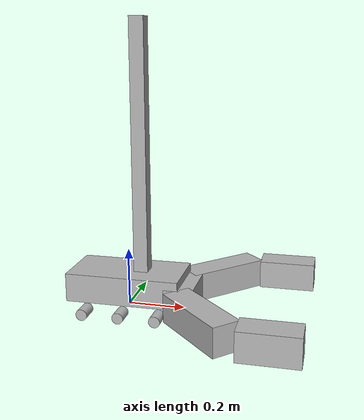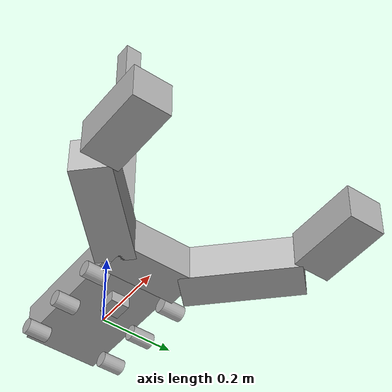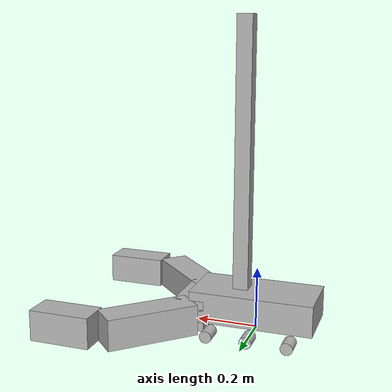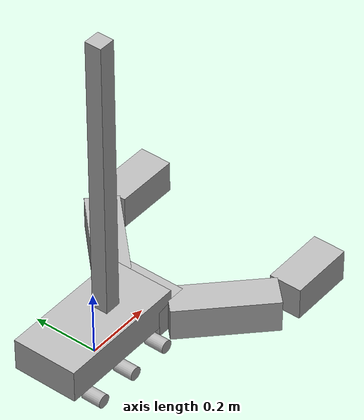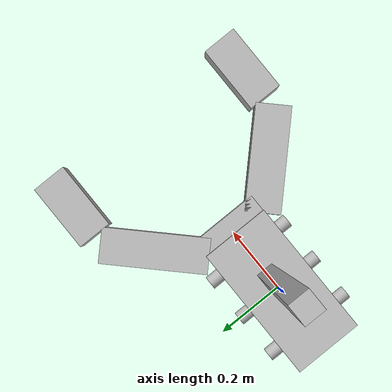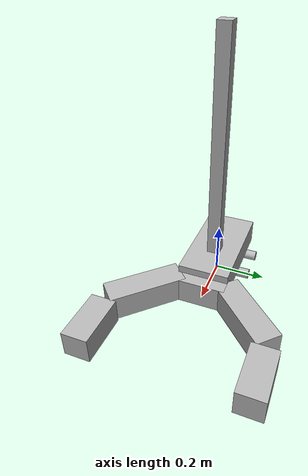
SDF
<?xml version="1.0" ?>
<sdf version="1.5">
  <model name="six_leg_robot">

    <include>
      <uri>model://simple_gripper</uri>
      <pose>0.2 0 0 0 0 0</pose>
    </include>

    <include>
      <uri>model://base_robot</uri>
      <pose>0 0 0 0 0 0</pose>
    </include>

    <joint name="arm_gripper_joint" type="fixed">
      <parent>mobile_base::chassis</parent>
      <child>simple_gripper::riser</child>
    </joint>

  </model>
</sdf>

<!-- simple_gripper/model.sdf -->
<sdf version="1.5">
  <model name="simple_gripper">
    <link name="riser">
      <pose>-0.15 0.0 0.5 0 0 0</pose>
      <inertial>
        <mass>10</mass>
      </inertial>
      <collision name="collision">
        <geometry>
          <box>
            <size>0.05 0.05 1.0</size>
          </box>
        </geometry>
        <surface>
          <contact>
            <ode>
              <max_vel>0.0</max_vel>
            </ode>
          </contact>
        </surface>
      </collision>
      <visual name="visual">
        <geometry>
          <box>
            <size>0.05 0.05 1.0</size>
          </box>
        </geometry>
      </visual>
    </link>
    <link name="palm">
      <pose>0.0 0.0 0.05 0 0 0</pose>
      <inertial>
        <mass>0.5</mass>
      </inertial>
      <collision name="collision">
        <geometry>
          <box>
            <size>0.1 0.2 0.1</size>
          </box>
        </geometry>
        <surface>
          <contact>
            <ode>
              <max_vel>0.0</max_vel>
            </ode>
          </contact>
        </surface>
      </collision>
      <visual name="visual">
        <geometry>
          <box>
            <size>0.1 0.2 0.1</size>
          </box>
        </geometry>
      </visual>
    </link>
    <link name="left_finger">
      <pose>0.1 0.2 0.05 0 0 -0.78539</pose>
      <inertial>
        <mass>0.1</mass>
      </inertial>
      <collision name="collision">
        <geometry>
          <box>
            <size>0.1 0.3 0.1</size>
          </box>
        </geometry>
        <surface>
          <friction>
            <ode>
              <mu>0.1</mu>
              <mu2>0</mu2>
            </ode>
          </friction>
          <contact>
            <ode>
              <max_vel>0.0</max_vel>
            </ode>
          </contact>
        </surface>
      </collision>
      <visual name="visual">
        <geometry>
          <box>
            <size>0.1 0.3 0.1</size>
          </box>
        </geometry>
      </visual>
    </link>
    <link name="left_finger_tip">
      <pose>0.336 0.3 0.05 0 0 1.5707</pose>
      <inertial>
        <mass>0.5</mass>
      </inertial>
      <collision name="collision">
        <geometry>
          <box>
            <size>0.1 0.2 0.1</size>
          </box>
        </geometry>
        <surface>
          <friction>
            <ode>
              <mu>.1</mu>
              <mu2>0</mu2>
            </ode>
          </friction>
          <contact>
            <ode>
              <max_vel>0.0</max_vel>
            </ode>
          </contact>
        </surface>
      </collision>
      <visual name="visual">
        <geometry>
          <box>
            <size>0.1 0.2 0.1</size>
          </box>
        </geometry>
      </visual>
    </link>
    <link name="right_finger">
      <pose>0.1 -0.2 0.05 0 0 .78539</pose>
      <inertial>
        <mass>0.1</mass>
      </inertial>
      <collision name="collision">
        <geometry>
          <box>
            <size>0.1 0.3 0.1</size>
          </box>
        </geometry>
        <surface>
          <friction>
            <ode>
              <mu>0.1</mu>
              <mu2>0</mu2>
            </ode>
          </friction>
          <contact>
            <ode>
              <max_vel>0.0</max_vel>
            </ode>
          </contact>
        </surface>
      </collision>
      <visual name="visual">
        <geometry>
          <box>
            <size>0.1 0.3 0.1</size>
          </box>
        </geometry>
      </visual>
    </link>
    <link name="right_finger_tip">
      <pose>0.336 -0.3 0.05 0 0 1.5707</pose>
      <inertial>
        <mass>0.1</mass>
      </inertial>
      <collision name="collision">
        <geometry>
          <box>
            <size>0.1 0.2 0.1</size>
          </box>
        </geometry>
        <surface>
          <friction>
            <ode>
              <mu>0.1</mu>
              <mu2>0</mu2>
            </ode>
          </friction>
          <contact>
            <ode>
              <max_vel>0.0</max_vel>
            </ode>
          </contact>
        </surface>
      </collision>
      <visual name="visual">
        <geometry>
          <box>
            <size>0.1 0.2 0.1</size>
          </box>
        </geometry>
      </visual>
    </link>
    <joint name="palm_left_finger" type="revolute">
      <pose>0 -0.15 0 0 0 0</pose>
      <child>left_finger</child>
      <parent>palm</parent>
      <axis>
        <limit>
          <lower>-0.8</lower>
          <upper>0.8</upper>
        </limit>
        <xyz>0 0 1</xyz>
        <use_parent_model_frame>true</use_parent_model_frame>
      </axis>
    </joint>
    <joint name="left_finger_tip" type="revolute">
      <pose>0 0.1 0 0 0 0</pose>
      <child>left_finger_tip</child>
      <parent>left_finger</parent>
      <axis>
        <limit>
          <lower>-0.8</lower>
          <upper>0.8</upper>
        </limit>
        <xyz>0 0 1</xyz>
        <use_parent_model_frame>true</use_parent_model_frame>
      </axis>
    </joint>
    <joint name="palm_right_finger" type="revolute">
      <pose>0 0.15 0 0 0 0</pose>
      <child>right_finger</child>
      <parent>palm</parent>
      <axis>
        <limit>
          <lower>-0.8</lower>
          <upper>0.8</upper>
        </limit>
        <xyz>0 0 1</xyz>
        <use_parent_model_frame>true</use_parent_model_frame>
      </axis>
    </joint>
    <joint name="right_finger_tip" type="revolute">
      <pose>0 0.1 0 0 0 0</pose>
      <child>right_finger_tip</child>
      <parent>right_finger</parent>
      <axis>
        <limit>
          <lower>-0.8</lower>
          <upper>0.8</upper>
        </limit>
        <xyz>0 0 1</xyz>
        <use_parent_model_frame>true</use_parent_model_frame>
      </axis>
    </joint>
    <joint name="palm_riser" type="prismatic">
      <child>palm</child>
      <parent>riser</parent>
      <axis>
        <limit>
          <lower>0</lower>
          <upper>0.9</upper>
        </limit>
        <xyz>0 0 1</xyz>
        <use_parent_model_frame>true</use_parent_model_frame>
      </axis>
    </joint>
    <gripper name="simple_gripper">
      <grasp_check>
        <detach_steps>40</detach_steps>
        <attach_steps>20</attach_steps>
        <min_contact_count>2</min_contact_count>
      </grasp_check>
      <gripper_link>right_finger</gripper_link>
      <gripper_link>right_finger_tip</gripper_link>
      <gripper_link>left_finger</gripper_link>
      <gripper_link>left_finger_tip</gripper_link>
      <palm_link>palm</palm_link>
    </gripper>
  </model>
</sdf>

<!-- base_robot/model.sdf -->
<sdf version='1.4'>
  <model name='base_robot'>

    <link name='chassis'>
      <pose>0 0 0.08 0 0 0</pose>
      <collision name='collision'>
        <geometry>
          <box>
            <size>.4 .2 .1</size>
          </box>
        </geometry>
      </collision>

      <visual name='visual'>
        <geometry>
          <box>
            <size>.4 .2 .1</size>
          </box>
        </geometry>
      </visual>
    </link>
    <link name='leg_0_1'>
      <pose>0.12 -0.08 0 0 -0 0</pose>
      <inertial>
        <pose>0.01 -0.03 0 1.5708 -0 0</pose>
        <mass>0.02</mass>
        <inertia>
          <ixx>8e-06</ixx>
          <ixy>0</ixy>
          <ixz>0</ixz>
          <iyy>8e-06</iyy>
          <iyz>0</iyz>
          <izz>6.66667e-07</izz>
        </inertia>
      </inertial>
      <collision name='leg_0_1_collision'>
        <pose>0.01 -0.03 0 1.5708 -0 0</pose>
        <geometry>
          <cylinder>
            <length>0.06</length>
            <radius>0.02</radius>
          </cylinder>
        </geometry>
      </collision>
      <visual name='leg_0_1_visual'>
        <pose>0.01 -0.03 0 1.5708 -0 0</pose>
        <geometry>
          <cylinder>
            <length>0.06</length>
            <radius>0.02</radius>
          </cylinder>
        </geometry>
      </visual>
    </link>
    <joint name='body_leg_0' type='revolute'>
      <child>leg_0_1</child>
      <parent>chassis</parent>
      <axis>
        <xyz>0 0 1</xyz>
        <limit>
          <lower>-0.785398</lower>
          <upper>0.785398</upper>
          <effort>20</effort>
          <velocity>2</velocity>
        </limit>
        <dynamics>
          <spring_reference>0</spring_reference>
          <spring_stiffness>0</spring_stiffness>
        </dynamics>
        <use_parent_model_frame>1</use_parent_model_frame>
      </axis>
    </joint>

    <link name='leg_1_1'>
      <pose>-0.01 -0.08 0 0 -0 0</pose>
      <inertial>
        <pose>0.01 -0.03 0 1.5708 -0 0</pose>
        <mass>0.02</mass>
        <inertia>
          <ixx>8e-06</ixx>
          <ixy>0</ixy>
          <ixz>0</ixz>
          <iyy>8e-06</iyy>
          <iyz>0</iyz>
          <izz>6.66667e-07</izz>
        </inertia>
      </inertial>
      <collision name='leg_1_1_collision'>
        <pose>0.01 -0.03 0 1.5708 -0 0</pose>
        <geometry>
          <cylinder>
            <length>0.06</length>
            <radius>0.02</radius>
          </cylinder>
        </geometry>
      </collision>
      <visual name='leg_1_1_visual'>
        <pose>0.01 -0.03 0 1.5708 -0 0</pose>
        <geometry>
          <cylinder>
            <length>0.06</length>
            <radius>0.02</radius>
          </cylinder>
        </geometry>
      </visual>
    </link>
    <joint name='body_leg_1' type='revolute'>
      <child>leg_1_1</child>
      <parent>chassis</parent>
      <axis>
        <xyz>0 0 1</xyz>
        <limit>
          <lower>-0.785398</lower>
          <upper>0.785398</upper>
          <effort>20</effort>
          <velocity>2</velocity>
        </limit>
        <dynamics>
          <spring_reference>0</spring_reference>
          <spring_stiffness>0</spring_stiffness>
        </dynamics>
        <use_parent_model_frame>1</use_parent_model_frame>
      </axis>
    </joint>

    <link name='leg_2_1'>
      <pose>-0.14 -0.08 0 0 -0 0</pose>
      <inertial>
        <pose>0.01 -0.03 0 1.5708 -0 0</pose>
        <mass>0.02</mass>
        <inertia>
          <ixx>8e-06</ixx>
          <ixy>0</ixy>
          <ixz>0</ixz>
          <iyy>8e-06</iyy>
          <iyz>0</iyz>
          <izz>6.66667e-07</izz>
        </inertia>
      </inertial>
      <collision name='leg_2_1_collision'>
        <pose>0.01 -0.03 0 1.5708 -0 0</pose>
        <geometry>
          <cylinder>
            <length>0.06</length>
            <radius>0.02</radius>
          </cylinder>
        </geometry>
      </collision>
      <visual name='leg_2_1_visual'>
        <pose>0.01 -0.03 0 1.5708 -0 0</pose>
        <geometry>
          <cylinder>
            <length>0.06</length>
            <radius>0.02</radius>
          </cylinder>
        </geometry>
      </visual>
    </link>
    <joint name='body_leg_2' type='revolute'>
      <child>leg_2_1</child>
      <parent>chassis</parent>
      <axis>
        <xyz>0 0 1</xyz>
        <limit>
          <lower>-0.785398</lower>
          <upper>0.785398</upper>
          <effort>20</effort>
          <velocity>2</velocity>
        </limit>
        <dynamics>
          <spring_reference>0</spring_reference>
          <spring_stiffness>0</spring_stiffness>
        </dynamics>
        <use_parent_model_frame>1</use_parent_model_frame>
      </axis>
    </joint>

    <link name='leg_3_1'>
      <pose>-0.14 0.08 0 0 -0 0</pose>
      <inertial>
        <pose>0.01 0.03 0 1.5708 -0 0</pose>
        <mass>0.02</mass>
        <inertia>
          <ixx>8e-06</ixx>
          <ixy>0</ixy>
          <ixz>0</ixz>
          <iyy>8e-06</iyy>
          <iyz>0</iyz>
          <izz>6.66667e-07</izz>
        </inertia>
      </inertial>
      <collision name='leg_3_1_collision'>
        <pose>0.01 0.03 0 1.5708 -0 0</pose>
        <geometry>
          <cylinder>
            <length>0.06</length>
            <radius>0.02</radius>
          </cylinder>
        </geometry>
      </collision>
      <visual name='leg_3_1_visual'>
        <pose>0.01 0.03 0 1.5708 -0 0</pose>
        <geometry>
          <cylinder>
            <length>0.06</length>
            <radius>0.02</radius>
          </cylinder>
        </geometry>
      </visual>
    </link>
    <joint name='body_leg_3' type='revolute'>
      <child>leg_3_1</child>
      <parent>chassis</parent>
      <axis>
        <xyz>0 0 1</xyz>
        <limit>
          <lower>-0.785398</lower>
          <upper>0.785398</upper>
          <effort>20</effort>
          <velocity>2</velocity>
        </limit>
        <dynamics>
          <spring_reference>0</spring_reference>
          <spring_stiffness>0</spring_stiffness>
        </dynamics>
        <use_parent_model_frame>1</use_parent_model_frame>
      </axis>
    </joint>

    <link name='leg_4_1'>
      <pose>-0.01 0.08 0 0 -0 0</pose>
      <inertial>
        <pose>0.01 0.03 0 1.5708 -0 0</pose>
        <mass>0.02</mass>
        <inertia>
          <ixx>8e-06</ixx>
          <ixy>0</ixy>
          <ixz>0</ixz>
          <iyy>8e-06</iyy>
          <iyz>0</iyz>
          <izz>6.66667e-07</izz>
        </inertia>
      </inertial>
      <collision name='leg_4_1_collision'>
        <pose>0.01 0.03 0 1.5708 -0 0</pose>
        <geometry>
          <cylinder>
            <length>0.06</length>
            <radius>0.02</radius>
          </cylinder>
        </geometry>
      </collision>
      <visual name='leg_4_1_visual'>
        <pose>0.01 0.03 0 1.5708 -0 0</pose>
        <geometry>
          <cylinder>
            <length>0.06</length>
            <radius>0.02</radius>
          </cylinder>
        </geometry>
      </visual>
    </link>
    <joint name='body_leg_4' type='revolute'>
      <child>leg_4_1</child>
      <parent>chassis</parent>
      <axis>
        <xyz>0 0 1</xyz>
        <limit>
          <lower>-0.785398</lower>
          <upper>0.785398</upper>
          <effort>20</effort>
          <velocity>2</velocity>
        </limit>
        <dynamics>
          <spring_reference>0</spring_reference>
          <spring_stiffness>0</spring_stiffness>
        </dynamics>
        <use_parent_model_frame>1</use_parent_model_frame>
      </axis>
    </joint>

    <link name='leg_5_1'>
      <pose>0.12 0.08 0 0 -0 0</pose>
      <inertial>
        <pose>0.01 0.03 0 1.5708 -0 0</pose>
        <mass>0.02</mass>
        <inertia>
          <ixx>8e-06</ixx>
          <ixy>0</ixy>
          <ixz>0</ixz>
          <iyy>8e-06</iyy>
          <iyz>0</iyz>
          <izz>6.66667e-07</izz>
        </inertia>
      </inertial>
      <collision name='leg_5_1_collision'>
        <pose>0.01 0.03 0 1.5708 -0 0</pose>
        <geometry>
          <cylinder>
            <length>0.06</length>
            <radius>0.02</radius>
          </cylinder>
        </geometry>
      </collision>
      <visual name='leg_5_1_visual'>
        <pose>0.01 0.03 0 1.5708 -0 0</pose>
        <geometry>
          <cylinder>
            <length>0.06</length>
            <radius>0.02</radius>
          </cylinder>
        </geometry>
      </visual>
    </link>
    <joint name='body_leg_5' type='revolute'>
      <child>leg_5_1</child>
      <parent>chassis</parent>
      <axis>
        <xyz>0 0 1</xyz>
        <limit>
          <lower>-0.785398</lower>
          <upper>0.785398</upper>
          <effort>20</effort>
          <velocity>2</velocity>
        </limit>
        <dynamics>
          <spring_reference>0</spring_reference>
          <spring_stiffness>0</spring_stiffness>
        </dynamics>
        <use_parent_model_frame>1</use_parent_model_frame>
      </axis>
    </joint>
  </model>
</sdf>
